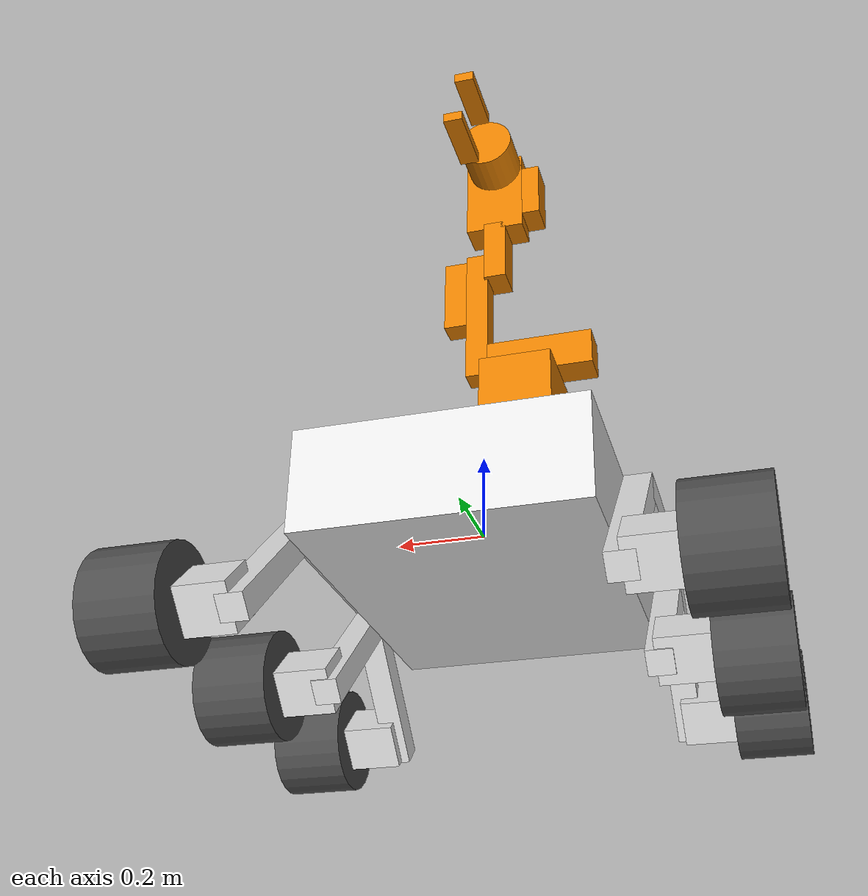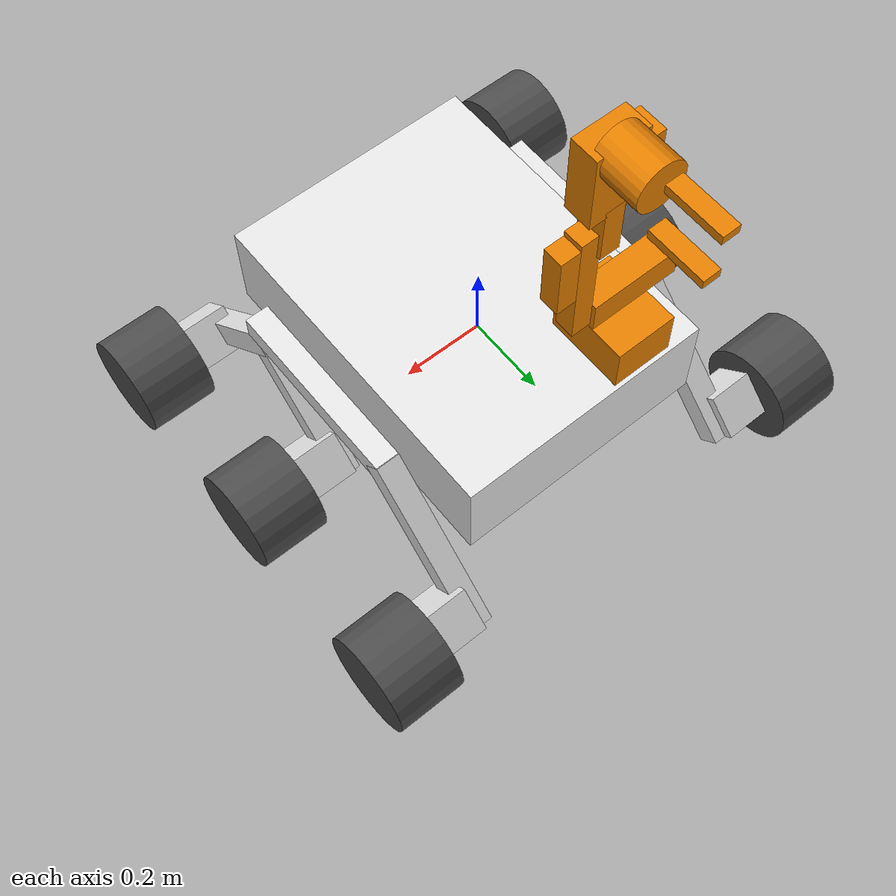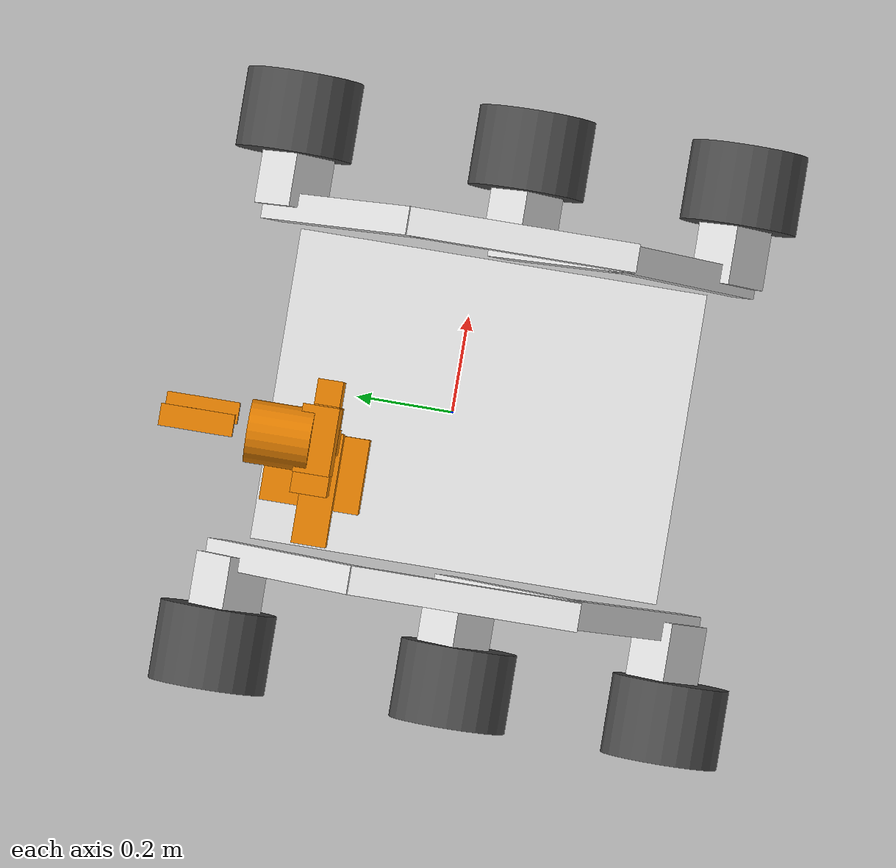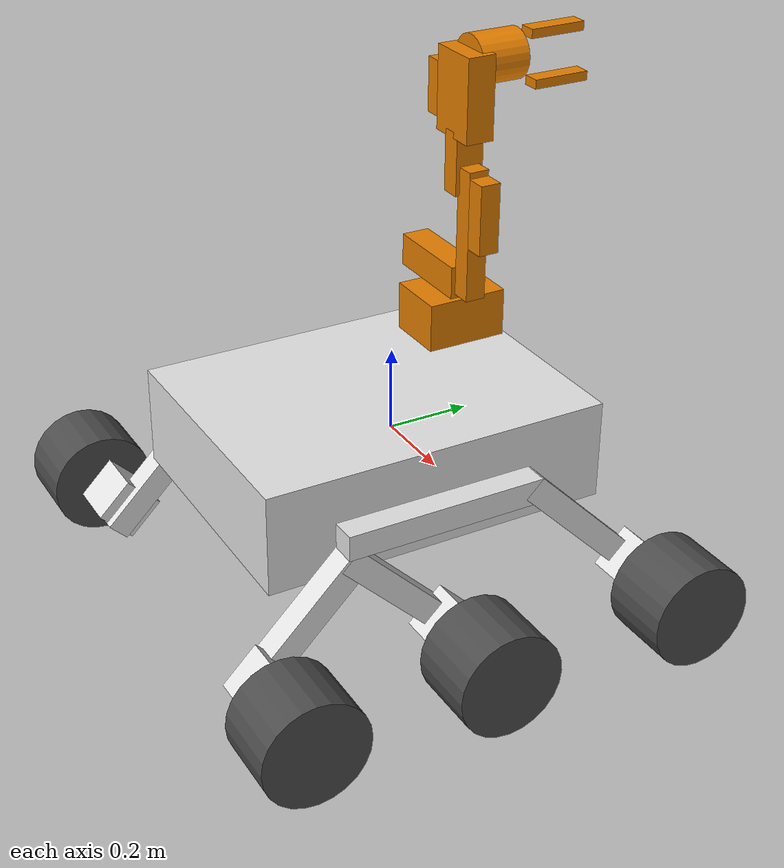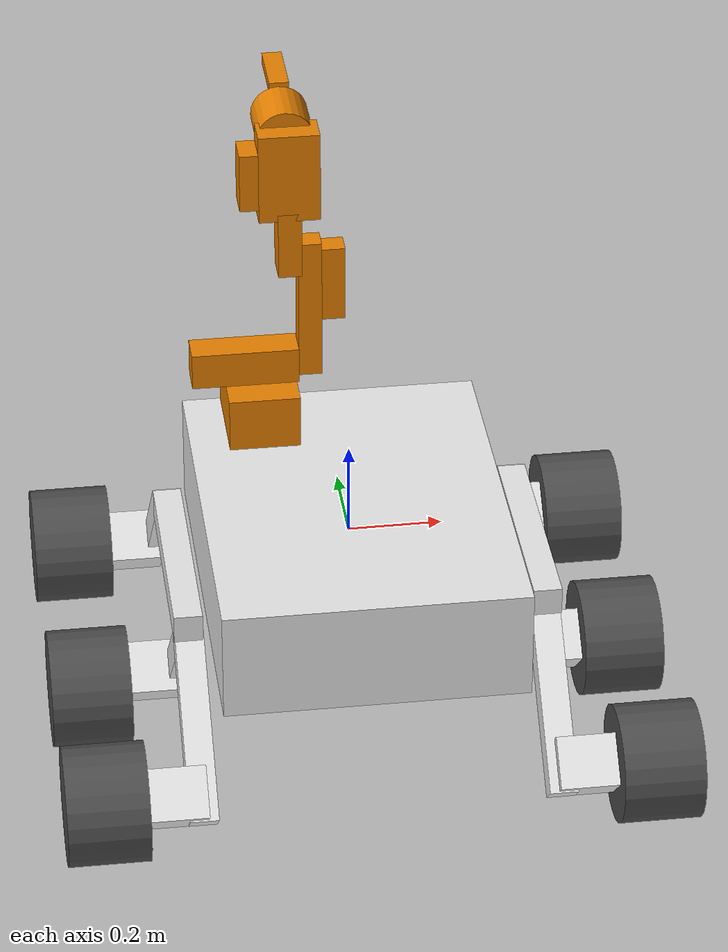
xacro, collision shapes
<?xml version="1.0"?>
<robot name="rover_with_two_finger_arm" xmlns:xacro="http://www.ros.org/wiki/xacro">

    <xacro:include filename="common_properties.xacro" />
    <xacro:include filename="$(find rover_body_description)/urdf/rover_body.urdf.xacro" />

    <xacro:include filename="$(find rover_two_finger_arm_description)/urdf/rover_two_finger_arm.urdf.xacro" />
    <xacro:include filename="$(find rover_two_finger_arm_description)/urdf/rover_two_finger_arm.ros2_control.xacro" />
    <xacro:include filename="$(find my_robot_description)/urdf/rover_body.ros2_control.xacro" />

    <!-- rover base: world link is the root so RViz's world frame exists -->
    <link name="world"/>
    <link name="base_footprint"/>
    <link name="base_link"/>
    <joint name="world_to_base_footprint" type="fixed">
        <parent link="world"/>
        <child link="base_footprint"/>
        <origin xyz="0 0 0" rpy="0 0 0"/>
    </joint>
    <joint name="base_footprint_to_base_link" type="fixed">
        <parent link="base_footprint"/>
        <child link="base_link"/>
        <origin xyz="0 0 0" rpy="0 0 0"/>
    </joint>

    <!-- rover body: detailed frame/suspensions/wheels, main link is body_frame -->
    <xacro:rover_body parent="base_link" prefix="body_">
        <origin xyz="0 0 0" rpy="0 0 0"/>
    </xacro:rover_body>

    <link name="arm_mount" />
    <link name="arm_base_link" />

    <joint name="arm_mount_joint" type="fixed">
        <parent link="body_frame"/>
        <child link="arm_mount"/>
        <origin xyz="-0.16 0.24 0.20" rpy="0 0 0"/>
    </joint>

    <joint name="arm_mount_to_arm_base" type="fixed">
        <parent link="arm_mount"/>
        <child link="arm_base_link"/>
        <origin xyz="0 0 0" rpy="0 0 0"/>
    </joint>

    <xacro:rover_two_finger_arm parent="arm_base_link" prefix="">
        <origin xyz="0 0 0" rpy="0 0 0"/>
    </xacro:rover_two_finger_arm>

    <link name="tool0"/>
    <joint name="ee_base_to_tool0" type="fixed">
        <parent link="ee_base"/>
        <child link="tool0"/>
        <origin xyz="0 0 0" rpy="0 0 0"/>
    </joint>

    <xacro:two_finger_arm_ros2_control name="rover_two_finger_arm" use_gazebo="false"/>
</robot>

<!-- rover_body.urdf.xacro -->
<robot xmlns:xacro="http://www.ros.org/wiki/xacro">

  <xacro:include filename="wheel.urdf.xacro" />

  <xacro:macro name="rover_body" params="prefix parent *origin">

  <!-- LINK OFFSETS -->
  <xacro:property name="frame_rotation_offset" value="${pi / 2} 0 0" />
  <xacro:property name="left_suspension_rotation_offset" value="${pi / 2} 0 0" />
  <xacro:property name="left_sub_suspension_rotation_offset" value="${pi / 2} 0 0" />
  <xacro:property name="right_suspension_rotation_offset" value="${pi / 2} 0 0" />
  <xacro:property name="right_sub_suspension_rotation_offset" value="${pi / 2} 0 0" />

  <!-- JOINT POSITIONS -->
  <xacro:property name="frame_joint_pos" value="0 0 0" />
  <xacro:property name="left_suspension_joint_pos" value="-0.3516 -0.053959 0" />
  <xacro:property name="left_sub_suspension_joint_pos" value="0.028 -0.249772 -0.051126" />
  <xacro:property name="right_suspension_joint_pos" value="0.3516 -0.053959 0" />
  <xacro:property name="right_sub_suspension_joint_pos" value="-0.028 -0.249772 -0.051126" />

  <!-- Camera dimentions and positions -->
  <xacro:property name="pole_height" value="0.312"/>
  <xacro:property name="pole_width" value="0.02"/>
  <xacro:property name="camera_len" value="0.178"/>
  <xacro:property name="camera_width" value="0.045"/>
  <xacro:property name="camera_height" value="0.03"/>

  <!-- COLORS -->
  <!-- links color -->
  <material name="${prefix}links_color">
    <color rgba="0.9 0.9 0.9 1.0"/>
  </material>

  <link name="${prefix}frame">
    <inertial>
      <mass value="20.0"/>
      <inertia ixx="1.0" ixy="0.0" ixz="0.0" iyy="1.0" iyz="0.0" izz="1.0"/>
    </inertial>
    <visual>
      <origin xyz="0 0 0" rpy="${frame_rotation_offset}"/>
      <geometry>
        <mesh filename="package://rover_body_description/meshes/visual/frame.stl" scale="0.001 0.001 0.001"/>
      </geometry>
      <material name="${prefix}links_color"/>
    </visual>
    <collision>
      <origin xyz="0 -0.053959 0" rpy="0 0 0"/>
      <geometry>
        <box size="0.64 0.84 0.24"/>
      </geometry>
    </collision>
  </link>

  <link name="${prefix}left_suspension">
    <inertial>
      <mass value="3.0"/>
      <inertia ixx="0.1" ixy="0.0" ixz="0.0" iyy="0.1" iyz="0.0" izz="0.1"/>
    </inertial>
    <visual>
      <origin xyz="0 0 0" rpy="${left_suspension_rotation_offset}"/>
      <geometry>
        <mesh filename="package://rover_body_description/meshes/visual/left_suspension.stl" scale="0.001 0.001 0.001"/>
      </geometry>
      <material name="${prefix}links_color"/>
    </visual>
    <collision>
      <origin xyz="-0.024 -0.032 0" rpy="0 0 0"/>
      <geometry>
        <box size="0.06 0.48 0.06"/>
      </geometry>
    </collision>
    <collision>
      <origin xyz="-0.024 ${-0.032+0.38} -0.15" rpy="${- pi / 4} 0 0"/>
      <geometry>
        <box size="0.06 0.45 0.06"/>
      </geometry>
    </collision>
    <collision>
      <origin xyz="-0.094 ${-0.032 + 0.38 + 0.12} ${-0.15-0.12}" rpy="${- pi / 4} 0 0"/>
      <geometry>
        <box size="0.14 0.11 0.11"/>
      </geometry>
    </collision>
  </link>

  <link name="${prefix}left_sub_suspension">
    <inertial>
      <mass value="1.5"/>
      <inertia ixx="0.05" ixy="0.0" ixz="0.0" iyy="0.05" iyz="0.0" izz="0.05"/>
    </inertial>
    <visual>
      <origin xyz="0 0 0" rpy="${left_sub_suspension_rotation_offset}"/>
      <geometry>
        <mesh filename="package://rover_body_description/meshes/visual/left_sub_suspension.stl" scale="0.001 0.001 0.001"/>
      </geometry>
      <material name="${prefix}links_color"/>
    </visual>
    <collision>
      <origin xyz="-0.05 0.125 -0.125" rpy="${- pi / 4} 0 0"/>
      <geometry>
        <box size="0.06 0.4 0.06"/>
      </geometry>
    </collision>
    <collision>
      <origin xyz="-0.05 -0.125 -0.125" rpy="${pi / 4} 0 0"/>
      <geometry>
        <box size="0.06 0.4 0.06"/>
      </geometry>
    </collision>
    <collision>
      <origin xyz="-0.11 ${0.125 + 0.1} ${- 0.125 - 0.1}" rpy="${- pi / 4} 0 0"/>
      <geometry>
        <box size="0.14 0.11 0.11"/>
      </geometry>
    </collision>
    <collision>
      <origin xyz="-0.11 ${- 0.125 - 0.1} ${- 0.125 - 0.1}" rpy="${- pi / 4} 0 0"/>
      <geometry>
        <box size="0.14 0.11 0.11"/>
      </geometry>
    </collision>
  </link>

  <link name="${prefix}right_suspension">
    <inertial>
      <mass value="3.0"/>
      <inertia ixx="0.1" ixy="0.0" ixz="0.0" iyy="0.1" iyz="0.0" izz="0.1"/>
    </inertial>
    <visual>
      <origin xyz="0 0 0" rpy="${right_suspension_rotation_offset}"/>
      <geometry>
        <mesh filename="package://rover_body_description/meshes/visual/right_suspension.stl" scale="0.001 0.001 0.001"/>
      </geometry>
      <material name="${prefix}links_color"/>
    </visual>
    <collision>
      <origin xyz="0.024 -0.032 0" rpy="0 0 0"/>
      <geometry>
        <box size="0.06 0.48 0.06"/>
      </geometry>
    </collision>
    <collision>
      <origin xyz="0.024 ${-0.032+0.38} -0.15" rpy="${- pi / 4} 0 0"/>
      <geometry>
        <box size="0.06 0.45 0.06"/>
      </geometry>
    </collision>
    <collision>
      <origin xyz="0.094 ${-0.032 + 0.38 + 0.12} ${-0.15-0.12}" rpy="${- pi / 4} 0 0"/>
      <geometry>
        <box size="0.14 0.11 0.11"/>
      </geometry>
    </collision>
  </link>

  <link name="${prefix}right_sub_suspension">
    <inertial>
      <mass value="1.5"/>
      <inertia ixx="0.05" ixy="0.0" ixz="0.0" iyy="0.05" iyz="0.0" izz="0.05"/>
    </inertial>
    <visual>
      <origin xyz="0 0 0" rpy="${right_sub_suspension_rotation_offset}"/>
      <geometry>
        <mesh filename="package://rover_body_description/meshes/visual/right_sub_suspension.stl" scale="0.001 0.001 0.001"/>
      </geometry>
      <material name="${prefix}links_color"/>
    </visual>
    <collision>
      <origin xyz="0.05 0.125 -0.125" rpy="${- pi / 4} 0 0"/>
      <geometry>
        <box size="0.06 0.4 0.06"/>
      </geometry>
    </collision>
    <collision>
      <origin xyz="0.05 -0.125 -0.125" rpy="${pi / 4} 0 0"/>
      <geometry>
        <box size="0.06 0.4 0.06"/>
      </geometry>
    </collision>
    <collision>
      <origin xyz="0.11 ${0.125 + 0.1} ${- 0.125 - 0.1}" rpy="${- pi / 4} 0 0"/>
      <geometry>
        <box size="0.14 0.11 0.11"/>
      </geometry>
    </collision>
    <collision>
      <origin xyz="0.11 ${- 0.125 - 0.1} ${- 0.125 - 0.1}" rpy="${- pi / 4} 0 0"/>
      <geometry>
        <box size="0.14 0.11 0.11"/>
      </geometry>
    </collision>
  </link>

  <joint name="${prefix}mount_joint" type="fixed">
    <parent link="${parent}"/>
    <child link="${prefix}frame"/>
    <xacro:insert_block name="origin" />
  </joint>

  <joint name="${prefix}left_suspension_joint" type="revolute">
    <parent link="${prefix}frame"/>
    <child link="${prefix}left_suspension"/>
    <origin xyz="${left_suspension_joint_pos}" rpy="0 0 0"/>
    <axis xyz="1 0 0"/>
    <limit lower="${-pi / 2}" upper="${pi / 2}" effort="50.0" velocity="1.0"/>
  </joint>

  <joint name="${prefix}left_sub_suspension_joint" type="revolute">
    <parent link="${prefix}left_suspension"/>
    <child link="${prefix}left_sub_suspension"/>
    <origin xyz="${left_sub_suspension_joint_pos}" rpy="0 0 0"/>
    <axis xyz="1 0 0"/>
    <limit lower="${-pi / 2}" upper="${pi / 2}" effort="50.0" velocity="1.0"/>
  </joint>

  <joint name="${prefix}right_suspension_joint" type="revolute">
    <parent link="${prefix}frame"/>
    <child link="${prefix}right_suspension"/>
    <origin xyz="${right_suspension_joint_pos}" rpy="0 0 0"/>
    <axis xyz="1 0 0"/>
    <limit lower="${-pi / 2}" upper="${pi / 2}" effort="50.0" velocity="1.0"/>
  </joint>

  <joint name="${prefix}right_sub_suspension_joint" type="revolute">
    <parent link="${prefix}right_suspension"/>
    <child link="${prefix}right_sub_suspension"/>
    <origin xyz="${right_sub_suspension_joint_pos}" rpy="0 0 0"/>
    <axis xyz="1 0 0"/>
    <limit lower="${-pi / 2}" upper="${pi / 2}" effort="50.0" velocity="1.0"/>
  </joint>

  <!-- Left Wheels - mirror=0 -->
  <xacro:wheel prefix="${prefix}front_left" parent="${prefix}left_suspension" x_pos="-0.137" y_pos="0.480039" z_pos="-0.276626" mirror="0" />
  <xacro:wheel prefix="${prefix}mid_left"   parent="${prefix}left_sub_suspension" x_pos="-0.1645"  y_pos="0.211339" z_pos="-0.244995" mirror="0" />
  <xacro:wheel prefix="${prefix}rear_left"  parent="${prefix}left_sub_suspension" x_pos="-0.1645" y_pos="-0.244995" z_pos="-0.211339" mirror="0" />

  <!-- Right Wheels - mirror=1 -->
  <xacro:wheel prefix="${prefix}front_right" parent="${prefix}right_suspension" x_pos="0.137" y_pos="0.480039" z_pos="-0.276626" mirror="1" />
  <xacro:wheel prefix="${prefix}mid_right"   parent="${prefix}right_sub_suspension" x_pos="0.1645"  y_pos="0.229" z_pos="-0.2285" mirror="1" />
  <xacro:wheel prefix="${prefix}rear_right"  parent="${prefix}right_sub_suspension" x_pos="0.1645" y_pos="-0.229" z_pos="-0.225" mirror="1" />

  </xacro:macro>
</robot>

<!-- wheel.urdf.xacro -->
<robot xmlns:xacro="http://www.ros.org/wiki/xacro">

  <!-- x_pos, y_pos, z_pos: wheel joint position in relation to the parent link -->
  <!-- mirror: has a value of 0 for the left side, and 1 for the right side -->
  <xacro:macro name="wheel" params="prefix parent x_pos y_pos z_pos mirror">

    <joint name="${prefix}_wheel_joint" type="continuous">
      <parent link="${parent}"/>
      <child link="${prefix}_wheel_link"/>
      <origin xyz="${x_pos} ${y_pos} ${z_pos}" rpy="0 0 0"/>
      <axis xyz="1 0 0"/>
    </joint>

    <link name="${prefix}_wheel_link">
      <visual>
        <origin xyz="0 0 0" rpy="${pi / 2} 0 ${mirror * pi}"/>
        <geometry>
          <mesh filename="package://rover_body_description/meshes/visual/wheel.stl" scale="0.001 0.001 0.001"/>
        </geometry>
        <material name="black">
          <color rgba="0.3 0.3 0.3 1.0"/>
        </material>
      </visual>

      <collision>
        <origin xyz="${(mirror * 0.17) - 0.17 / 2} 0 0" rpy="${pi / 2} 0 ${pi / 2}"/>
        <geometry>
          <cylinder radius="0.125" length="0.17"/>
        </geometry>
      </collision>

      <inertial>
        <mass value="2.0"/>
        <inertia ixx="0.015" ixy="0.0" ixz="0.0" iyy="0.025" iyz="0.0" izz="0.025"/>
      </inertial>
    </link>

  </xacro:macro>
</robot>

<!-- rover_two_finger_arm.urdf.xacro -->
<robot name="rover_two_finger_arm" xmlns:xacro="http://www.ros.org/wiki/xacro">

  <xacro:macro name="rover_two_finger_arm" params="parent prefix *origin">

    <!-- LINK OFFSETS -->

    <xacro:property name="base_rotation_offset" value="${pi / 2} 0 0"/>
    <xacro:property name="j1_rotation_offset" value="${pi / 2} 0 0"/>
    <xacro:property name="j2_rotation_offset" value="${pi / 6} 0 0"/>
    <xacro:property name="j3_rotation_offset" value="${pi - 0.4366117} 0 0"/>

    <!-- Specific offsets for the two-finger gripper -->
    <xacro:property name="finger1_rotation_offset" value="0 0 ${pi / 2}"/>
    <xacro:property name="finger2_rotation_offset" value="${pi} 0 ${pi / 2}"/>

    <!-- JOINT POSITIONS -->

    <xacro:property name="j1_joint_pos" value="0 0 0.024"/>
    <xacro:property name="j2_joint_pos" value="0.0808 0 0.071"/>
    <xacro:property name="j3_joint_pos" value="0.007 0 0.25"/>
    <xacro:property name="ee_base_joint_pos" value="-0.028 0 0.2715"/>
    <xacro:property name="slider_joint_pos" value="0 0.11 0"/>

    <!-- Two-finger joint positions -->
    <xacro:property name="finger1_joint_pos" value="0.012017 0.156 -0.054914"/>
    <xacro:property name="finger1_joint_rotation" value="0 0 0"/>

    <xacro:property name="finger2_joint_pos" value="-0.012017 0.156 0.054914"/>
    <xacro:property name="finger2_joint_rotation" value="0 0 0"/>

    <!-- COLORS -->

    <material name="${prefix}links_color">
      <color rgba="0.9 0.5 0.0 1.0"/>
    </material>

    <!-- SLIDER TO FINGER CINEMATIC RELATION -->

    <xacro:property name="slider_length" value="0.05"/>
    <xacro:property name="finger_rotation_upper_bound" value="${pi / 2}"/>
    <xacro:property name="relation_multip"
                    value="${finger_rotation_upper_bound / slider_length}"/>

    <!-- WRIST GEAR VISUAL -->

    <xacro:macro name="wrist_gear" params="radius length color xyz rpy">

      <visual name="gear_disc">
        <origin xyz="${xyz}" rpy="${rpy}"/>
        <geometry>
          <cylinder radius="${radius}" length="${length}"/>
        </geometry>
        <material name="wrist_gear_mat">
          <color rgba="${color}"/>
        </material>
      </visual>

      <visual name="gear_bar_x">
        <origin xyz="${xyz}" rpy="${rpy}"/>
        <geometry>
          <box size="${radius * 2.0} ${radius * 0.28} ${length}"/>
        </geometry>
        <material name="wrist_gear_mat">
          <color rgba="${color}"/>
        </material>
      </visual>

      <visual name="gear_bar_y">
        <origin xyz="${xyz}" rpy="${rpy}"/>
        <geometry>
          <box size="${radius * 0.28} ${radius * 2.0} ${length}"/>
        </geometry>
        <material name="wrist_gear_mat">
          <color rgba="${color}"/>
        </material>
      </visual>

    </xacro:macro>

    <!-- BASE LINK -->

    <link name="${prefix}base">

      <visual>
        <origin xyz="0 0 0" rpy="${base_rotation_offset}"/>
        <geometry>
          <mesh
            filename="package://rover_two_finger_arm_description/meshes/visual/base.stl"
            scale="0.001 0.001 0.001"/>
        </geometry>
        <material name="${prefix}links_color"/>
      </visual>

      <collision>
        <origin xyz="0 0.015 -0.022" rpy="0 0 0"/>
        <geometry>
          <box size="0.153000 0.202000 0.122040"/>
        </geometry>
      </collision>

      <inertial>
        <mass value="2.5"/>
        <inertia
          ixx="0.02" ixy="0.0" ixz="0.0"
          iyy="0.02" iyz="0.0" izz="0.02"/>
      </inertial>

    </link>

    <link name="${prefix}j1">

      <visual>
        <origin xyz="0 0 0" rpy="${j1_rotation_offset}"/>
        <geometry>
          <mesh
            filename="package://rover_two_finger_arm_description/meshes/visual/j1.stl"
            scale="0.001 0.001 0.001"/>
        </geometry>
        <material name="${prefix}links_color"/>
      </visual>

      <collision>
        <origin xyz="-0.035 0 0.065" rpy="0 0 0"/>
        <geometry>
          <box size="0.23 0.07 0.08"/>
        </geometry>
      </collision>

      <inertial>
        <mass value="1.5"/>
        <inertia
          ixx="0.01" ixy="0.0" ixz="0.0"
          iyy="0.01" iyz="0.0" izz="0.01"/>
      </inertial>

    </link>

    <link name="${prefix}j2">

      <visual>
        <origin xyz="0 0 0" rpy="${j2_rotation_offset}"/>
        <geometry>
          <mesh
            filename="package://rover_two_finger_arm_description/meshes/visual/j2.stl"
            scale="0.001 0.001 0.001"/>
        </geometry>
        <material name="${prefix}links_color"/>
      </visual>

      <collision>
        <origin xyz="${0.05 / 2} 0 ${0.25 / 2}" rpy="0 0 0"/>
        <geometry>
          <box size="0.05 0.05 0.32"/>
        </geometry>
      </collision>

      <collision>
        <origin xyz="${0.05 + 0.05 / 2} 0 0.185" rpy="0 0 0"/>
        <geometry>
          <box size="0.05 0.05 0.17"/>
        </geometry>
      </collision>

      <inertial>
        <mass value="1.2"/>
        <inertia
          ixx="0.008" ixy="0.0" ixz="0.0"
          iyy="0.008" iyz="0.0" izz="0.008"/>
      </inertial>

    </link>

    <link name="${prefix}j3">

      <visual>
        <origin xyz="0 0 0" rpy="0 0 0"/>
        <geometry>
          <box size="0.08 0.08 0.25"/>
        </geometry>
        <material name="${prefix}links_color"/>
      </visual>

      <xacro:wrist_gear
        radius="0.04"
        length="0.02"
        color="0.25 0.25 0.28 1.0"
        xyz="${ee_base_joint_pos}"
        rpy="0 ${-pi / 2} 0"/>

      <collision>
        <origin xyz="${-0.05 / 2} 0 0.04" rpy="0 0 0"/>
        <geometry>
          <box size="0.05 0.07 0.15"/>
        </geometry>
      </collision>

      <collision>
        <origin xyz="${-0.05 / 2} 0 0.2" rpy="0 0 0"/>
        <geometry>
          <box size="0.13 0.07 0.2"/>
        </geometry>
      </collision>

      <collision>
        <origin xyz="${-(0.05 + 0.13 + 0.04) / 2} 0 0.195" rpy="0 0 0"/>
        <geometry>
          <box size="0.04 0.07 0.13"/>
        </geometry>
      </collision>

      <inertial>
        <mass value="1.0"/>
        <inertia
          ixx="0.006" ixy="0.0" ixz="0.0"
          iyy="0.006" iyz="0.0" izz="0.006"/>
      </inertial>

    </link>

    <!-- END EFFECTOR BASE - TWO FINGERS -->

    <link name="${prefix}ee_base">

      <visual>
        <origin xyz="0 0.018007 0" rpy="0 0 0"/>
        <geometry>
          <mesh
            filename="package://rover_two_finger_arm_description/meshes/visual/two_finger_version/end_effector_base.stl"
            scale="0.001 0.001 0.001"/>
        </geometry>
        <material name="${prefix}links_color"/>
      </visual>

      <xacro:wrist_gear
        radius="0.038"
        length="0.02"
        color="0.25 0.25 0.28 1.0"
        xyz="0 0 0"
        rpy="${pi / 2} 0 0"/>

      <collision>
        <origin xyz="0 0.07 0" rpy="${pi / 2} 0 0"/>
        <geometry>
          <cylinder radius="0.06" length="0.12"/>
        </geometry>
      </collision>

      <inertial>
        <mass value="0.6"/>
        <inertia
          ixx="0.003" ixy="0.0" ixz="0.0"
          iyy="0.003" iyz="0.0" izz="0.003"/>
      </inertial>

    </link>

    <!-- END EFFECTOR SLIDER -->

    <link name="${prefix}ee_slider">

      <visual>
        <origin xyz="0 0 0" rpy="0 0 0"/>
        <geometry>
          <mesh
            filename="package://rover_two_finger_arm_description/meshes/visual/two_finger_version/end_effector_slider.stl"
            scale="0.001 0.001 0.001"/>
        </geometry>
        <material name="${prefix}links_color"/>
      </visual>

      <inertial>
        <mass value="0.3"/>
        <inertia
          ixx="0.002" ixy="0.0" ixz="0.0"
          iyy="0.002" iyz="0.0" izz="0.002"/>
      </inertial>

    </link>

    <!-- END EFFECTOR FINGER 1 -->

    <link name="${prefix}ee_finger1">

      <visual>
        <origin xyz="0 0 0" rpy="${finger1_rotation_offset}"/>
        <geometry>
          <mesh
            filename="package://rover_two_finger_arm_description/meshes/visual/two_finger_version/end_effector_finger.stl"
            scale="0.001 0.001 0.001"/>
        </geometry>
        <material name="${prefix}links_color"/>
      </visual>

      <collision>
        <origin xyz="0.016 ${0.14 / 2} ${-0.022 / 2}" rpy="0 0 0"/>
        <geometry>
          <box size="0.042 0.14 0.022"/>
        </geometry>
      </collision>

      <inertial>
        <mass value="0.05"/>
        <inertia
          ixx="0.0005" ixy="0.0" ixz="0.0"
          iyy="0.0005" iyz="0.0" izz="0.0005"/>
      </inertial>

    </link>

    <!-- END EFFECTOR FINGER 2 -->

    <link name="${prefix}ee_finger2">

      <visual>
        <origin xyz="0 0 0" rpy="${finger2_rotation_offset}"/>
        <geometry>
          <mesh
            filename="package://rover_two_finger_arm_description/meshes/visual/two_finger_version/end_effector_finger.stl"
            scale="0.001 0.001 0.001"/>
        </geometry>
        <material name="${prefix}links_color"/>
      </visual>

      <collision>
        <origin xyz="0.016 ${0.14 / 2} ${-0.022 / 2}" rpy="0 0 0"/>
        <geometry>
          <box size="0.042 0.14 0.022"/>
        </geometry>
      </collision>

      <inertial>
        <mass value="0.05"/>
        <inertia
          ixx="0.0005" ixy="0.0" ixz="0.0"
          iyy="0.0005" iyz="0.0" izz="0.0005"/>
      </inertial>

    </link>

    <!-- JOINTS -->

    <!-- Mount arm to rover -->

    <joint name="${prefix}mount_joint" type="fixed">
      <parent link="${parent}"/>
      <child link="${prefix}base"/>
      <xacro:insert_block name="origin"/>
    </joint>

    <joint name="${prefix}j1_joint" type="continuous">
      <parent link="${prefix}base"/>
      <child link="${prefix}j1"/>
      <origin xyz="${j1_joint_pos}" rpy="0 0 0"/>
      <axis xyz="0 0 1"/>
    </joint>

    <joint name="${prefix}j2_joint" type="revolute">
      <parent link="${prefix}j1"/>
      <child link="${prefix}j2"/>
      <origin xyz="${j2_joint_pos}" rpy="0 0 0"/>
      <axis xyz="1 0 0"/>
      <limit
        lower="-1.5808"
        upper="1.5808"
        effort="50.0"
        velocity="1.0"/>
    </joint>

    <joint name="${prefix}j3_joint" type="revolute">
      <parent link="${prefix}j2"/>
      <child link="${prefix}j3"/>
      <origin xyz="${j3_joint_pos}" rpy="0 0 0"/>
      <axis xyz="1 0 0"/>
      <limit
        lower="-1.5808"
        upper="1.5808"
        effort="50.0"
        velocity="1.0"/>
    </joint>

    <!-- WRIST DUMMY LINK -->

    <link name="${prefix}ee_base_dummy">

      <inertial>
        <mass value="0.02"/>
        <inertia
          ixx="0.0002" ixy="0.0" ixz="0.0"
          iyy="0.0002" iyz="0.0" izz="0.0002"/>
      </inertial>

      <xacro:wrist_gear
        radius="0.04"
        length="0.02"
        color="0.25 0.25 0.28 1.0"
        xyz="0 0 0"
        rpy="0 ${-pi / 2} 0"/>

      <xacro:wrist_gear
        radius="0.038"
        length="0.02"
        color="0.25 0.25 0.28 1.0"
        xyz="0 0 0"
        rpy="${pi / 2} 0 0"/>

    </link>

    <!-- WRIST PITCH - J4 -->

    <joint name="${prefix}ee_base_joint_x" type="revolute">
      <parent link="${prefix}j3"/>
      <child link="${prefix}ee_base_dummy"/>
      <origin xyz="${ee_base_joint_pos}" rpy="0 0 0"/>
      <axis xyz="1 0 0"/>
      <limit
        lower="-0.01"
        upper="3.1516"
        effort="50.0"
        velocity="1.0"/>
    </joint>

    <!-- WRIST ROLL - J5 -->

    <joint name="${prefix}ee_base_joint_y" type="continuous">
      <parent link="${prefix}ee_base_dummy"/>
      <child link="${prefix}ee_base"/>
      <origin xyz="0 0 0" rpy="0 0 0"/>
      <axis xyz="0 1 0"/>
    </joint>

    <!-- SLIDER -->

    <joint name="${prefix}slider_joint" type="prismatic">
      <parent link="${prefix}ee_base"/>
      <child link="${prefix}ee_slider"/>
      <origin xyz="${slider_joint_pos}" rpy="0 0 0"/>
      <axis xyz="0 1 0"/>
      <limit
        lower="-0.01"
        upper="0.06"
        effort="50.0"
        velocity="1.0"/>
    </joint>

    <!-- FINGER 1 -->

    <joint name="${prefix}finger1_joint" type="revolute">
      <parent link="${prefix}ee_base"/>
      <child link="${prefix}ee_finger1"/>
      <origin xyz="${finger1_joint_pos}" rpy="${finger1_joint_rotation}"/>
      <axis xyz="-1 0 0"/>
      <limit
        lower="0.0"
        upper="${finger_rotation_upper_bound}"
        effort="50.0"
        velocity="1.0"/>
      <mimic
        joint="${prefix}slider_joint"
        multiplier="${relation_multip}"
        offset="0.0"/>
    </joint>

    <!-- FINGER 2 -->

    <joint name="${prefix}finger2_joint" type="revolute">
      <parent link="${prefix}ee_base"/>
      <child link="${prefix}ee_finger2"/>
      <origin xyz="${finger2_joint_pos}" rpy="${finger2_joint_rotation}"/>
      <axis xyz="1 0 0"/>
      <limit
        lower="0.0"
        upper="${finger_rotation_upper_bound}"
        effort="50.0"
        velocity="1.0"/>
      <mimic
        joint="${prefix}slider_joint"
        multiplier="${relation_multip}"
        offset="0.0"/>
    </joint>

  </xacro:macro>

</robot>
